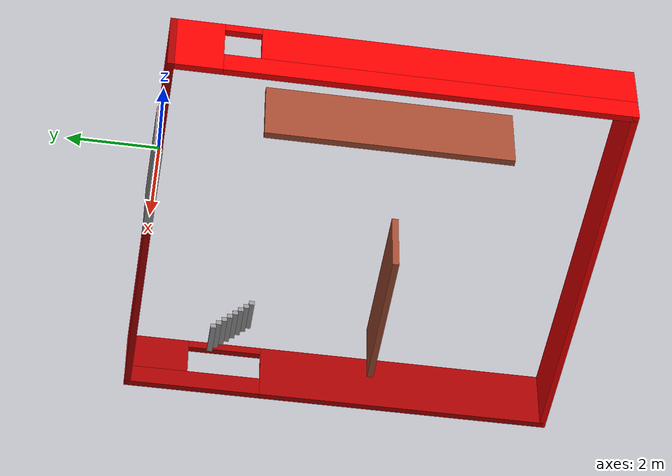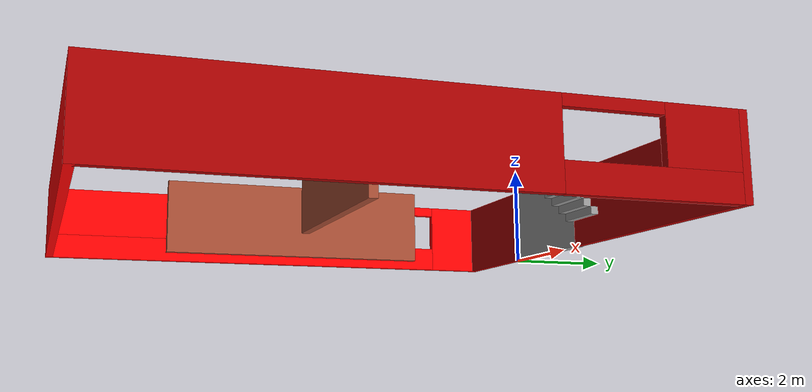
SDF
<?xml version='1.0'?>
<sdf version='1.6'>
  <model name='myhouse'>
    <pose frame=''>2.575 -5 0 0 -0 0</pose>
    <link name='Door_0'>
      <collision name='Door_0_Collision'>
        <geometry>
          <box>
            <size>2.4609 0.2 1.5</size>
          </box>
        </geometry>
        <pose frame=''>0 0 0.75 0 -0 0</pose>
      </collision>
      <visual name='Door_0_Visual'>
        <pose frame=''>0 0 0.75 0 -0 0</pose>
        <geometry>
          <box>
            <size>2.4609 0.2 1.5</size>
          </box>
        </geometry>
        <material>
          <script>
            <uri>file://media/materials/scripts/gazebo.material</uri>
            <name>Gazebo/Grey</name>
          </script>
        </material>
      </visual>
      <pose frame=''>-1.22464 5.01272 0 0 0 -3.13845</pose>
    </link>
    <link name='Stairs_1'>
      <visual name='Stairs_1_Visual_0'>
        <pose frame=''>3.16906 3.19744 0.0625 0 -0 0</pose>
        <geometry>
          <box>
            <size>0.8 0.125 0.125</size>
          </box>
        </geometry>
        <material>
          <script>
            <uri>file://media/materials/scripts/gazebo.material</uri>
            <name>Gazebo/Grey</name>
          </script>
          <ambient>1 1 1 1</ambient>
        </material>
        <meta>
          <layer>0</layer>
        </meta>
      </visual>
      <collision name='Stairs_1_Collision_0'>
        <geometry>
          <box>
            <size>0.8 0.125 0.125</size>
          </box>
        </geometry>
        <pose frame=''>3.16906 3.19744 0.0625 0 -0 0</pose>
      </collision>
      <visual name='Stairs_1_Visual_1'>
        <pose frame=''>3.16906 3.07244 0.1875 0 -0 0</pose>
        <geometry>
          <box>
            <size>0.8 0.125 0.125</size>
          </box>
        </geometry>
        <material>
          <script>
            <uri>file://media/materials/scripts/gazebo.material</uri>
            <name>Gazebo/Grey</name>
          </script>
          <ambient>1 1 1 1</ambient>
        </material>
        <meta>
          <layer>0</layer>
        </meta>
      </visual>
      <collision name='Stairs_1_Collision_1'>
        <geometry>
          <box>
            <size>0.8 0.125 0.125</size>
          </box>
        </geometry>
        <pose frame=''>3.16906 3.07244 0.1875 0 -0 0</pose>
      </collision>
      <visual name='Stairs_1_Visual_2'>
        <pose frame=''>3.16906 2.94744 0.3125 0 -0 0</pose>
        <geometry>
          <box>
            <size>0.8 0.125 0.125</size>
          </box>
        </geometry>
        <material>
          <script>
            <uri>file://media/materials/scripts/gazebo.material</uri>
            <name>Gazebo/Grey</name>
          </script>
          <ambient>1 1 1 1</ambient>
        </material>
        <meta>
          <layer>0</layer>
        </meta>
      </visual>
      <collision name='Stairs_1_Collision_2'>
        <geometry>
          <box>
            <size>0.8 0.125 0.125</size>
          </box>
        </geometry>
        <pose frame=''>3.16906 2.94744 0.3125 0 -0 0</pose>
      </collision>
      <visual name='Stairs_1_Visual_3'>
        <pose frame=''>3.16906 2.82244 0.4375 0 -0 0</pose>
        <geometry>
          <box>
            <size>0.8 0.125 0.125</size>
          </box>
        </geometry>
        <material>
          <script>
            <uri>file://media/materials/scripts/gazebo.material</uri>
            <name>Gazebo/Grey</name>
          </script>
          <ambient>1 1 1 1</ambient>
        </material>
        <meta>
          <layer>0</layer>
        </meta>
      </visual>
      <collision name='Stairs_1_Collision_3'>
        <geometry>
          <box>
            <size>0.8 0.125 0.125</size>
          </box>
        </geometry>
        <pose frame=''>3.16906 2.82244 0.4375 0 -0 0</pose>
      </collision>
      <visual name='Stairs_1_Visual_4'>
        <pose frame=''>3.16906 2.69744 0.5625 0 -0 0</pose>
        <geometry>
          <box>
            <size>0.8 0.125 0.125</size>
          </box>
        </geometry>
        <material>
          <script>
            <uri>file://media/materials/scripts/gazebo.material</uri>
            <name>Gazebo/Grey</name>
          </script>
          <ambient>1 1 1 1</ambient>
        </material>
        <meta>
          <layer>0</layer>
        </meta>
      </visual>
      <collision name='Stairs_1_Collision_4'>
        <geometry>
          <box>
            <size>0.8 0.125 0.125</size>
          </box>
        </geometry>
        <pose frame=''>3.16906 2.69744 0.5625 0 -0 0</pose>
      </collision>
      <visual name='Stairs_1_Visual_5'>
        <pose frame=''>3.16906 2.57244 0.6875 0 -0 0</pose>
        <geometry>
          <box>
            <size>0.8 0.125 0.125</size>
          </box>
        </geometry>
        <material>
          <script>
            <uri>file://media/materials/scripts/gazebo.material</uri>
            <name>Gazebo/Grey</name>
          </script>
          <ambient>1 1 1 1</ambient>
        </material>
        <meta>
          <layer>0</layer>
        </meta>
      </visual>
      <collision name='Stairs_1_Collision_5'>
        <geometry>
          <box>
            <size>0.8 0.125 0.125</size>
          </box>
        </geometry>
        <pose frame=''>3.16906 2.57244 0.6875 0 -0 0</pose>
      </collision>
      <visual name='Stairs_1_Visual_6'>
        <pose frame=''>3.16906 2.44744 0.8125 0 -0 0</pose>
        <geometry>
          <box>
            <size>0.8 0.125 0.125</size>
          </box>
        </geometry>
        <material>
          <script>
            <uri>file://media/materials/scripts/gazebo.material</uri>
            <name>Gazebo/Grey</name>
          </script>
          <ambient>1 1 1 1</ambient>
        </material>
        <meta>
          <layer>0</layer>
        </meta>
      </visual>
      <collision name='Stairs_1_Collision_6'>
        <geometry>
          <box>
            <size>0.8 0.125 0.125</size>
          </box>
        </geometry>
        <pose frame=''>3.16906 2.44744 0.8125 0 -0 0</pose>
      </collision>
      <visual name='Stairs_1_Visual_7'>
        <pose frame=''>3.16906 2.32244 0.9375 0 -0 0</pose>
        <geometry>
          <box>
            <size>0.8 0.125 0.125</size>
          </box>
        </geometry>
        <material>
          <script>
            <uri>file://media/materials/scripts/gazebo.material</uri>
            <name>Gazebo/Grey</name>
          </script>
          <ambient>1 1 1 1</ambient>
        </material>
        <meta>
          <layer>0</layer>
        </meta>
      </visual>
      <collision name='Stairs_1_Collision_7'>
        <geometry>
          <box>
            <size>0.8 0.125 0.125</size>
          </box>
        </geometry>
        <pose frame=''>3.16906 2.32244 0.9375 0 -0 0</pose>
      </collision>
    </link>
    <link name='Wall_17'>
      <pose frame=''>-4.925 0 0 0 0 -1.5708</pose>
      <visual name='Wall_17_Visual_0'>
        <pose frame=''>-4.48233 0 0.75 0 -0 0</pose>
        <geometry>
          <box>
            <size>1.18533 0.15 1.5</size>
          </box>
        </geometry>
        <material>
          <script>
            <uri>file://media/materials/scripts/gazebo.material</uri>
            <name>Gazebo/Grey</name>
          </script>
          <ambient>1 0 0 1</ambient>
        </material>
        <meta>
          <layer>0</layer>
        </meta>
      </visual>
      <collision name='Wall_17_Collision_0'>
        <geometry>
          <box>
            <size>1.18533 0.15 1.5</size>
          </box>
        </geometry>
        <pose frame=''>-4.48233 0 0.75 0 -0 0</pose>
      </collision>
      <visual name='Wall_17_Visual_1'>
        <pose frame=''>0.592665 0 0.25 0 -0 0</pose>
        <geometry>
          <box>
            <size>8.96467 0.15 0.5</size>
          </box>
        </geometry>
        <material>
          <script>
            <uri>file://media/materials/scripts/gazebo.material</uri>
            <name>Gazebo/Grey</name>
          </script>
          <ambient>1 0 0 1</ambient>
        </material>
        <meta>
          <layer>0</layer>
        </meta>
      </visual>
      <collision name='Wall_17_Collision_1'>
        <geometry>
          <box>
            <size>8.96467 0.15 0.5</size>
          </box>
        </geometry>
        <pose frame=''>0.592665 0 0.25 0 -0 0</pose>
      </collision>
      <visual name='Wall_17_Visual_2'>
        <pose frame=''>0.992665 0 1 0 -0 0</pose>
        <geometry>
          <box>
            <size>8.16467 0.15 1</size>
          </box>
        </geometry>
        <material>
          <script>
            <uri>file://media/materials/scripts/gazebo.material</uri>
            <name>Gazebo/Grey</name>
          </script>
          <ambient>1 0 0 1</ambient>
        </material>
        <meta>
          <layer>0</layer>
        </meta>
      </visual>
      <collision name='Wall_17_Collision_2'>
        <geometry>
          <box>
            <size>8.16467 0.15 1</size>
          </box>
        </geometry>
        <pose frame=''>0.992665 0 1 0 -0 0</pose>
      </collision>
      <visual name='Wall_17_Visual_3'>
        <pose frame=''>-3.48967 0 1.4 0 -0 0</pose>
        <geometry>
          <box>
            <size>0.8 0.15 0.2</size>
          </box>
        </geometry>
        <material>
          <script>
            <uri>file://media/materials/scripts/gazebo.material</uri>
            <name>Gazebo/Grey</name>
          </script>
          <ambient>1 0 0 1</ambient>
        </material>
        <meta>
          <layer>0</layer>
        </meta>
      </visual>
      <collision name='Wall_17_Collision_3'>
        <geometry>
          <box>
            <size>0.8 0.15 0.2</size>
          </box>
        </geometry>
        <pose frame=''>-3.48967 0 1.4 0 -0 0</pose>
      </collision>
    </link>
    <link name='Wall_19'>
      <collision name='Wall_19_Collision'>
        <geometry>
          <box>
            <size>10 0.15 1.5</size>
          </box>
        </geometry>
        <pose frame=''>0 0 0.75 0 -0 0</pose>
      </collision>
      <visual name='Wall_19_Visual'>
        <pose frame=''>0 0 0.75 0 -0 0</pose>
        <geometry>
          <box>
            <size>10 0.15 1.5</size>
          </box>
        </geometry>
        <material>
          <script>
            <uri>file://media/materials/scripts/gazebo.material</uri>
            <name>Gazebo/Grey</name>
          </script>
          <ambient>1 0 0 1</ambient>
        </material>
        <meta>
          <layer>0</layer>
        </meta>
      </visual>
      <pose frame=''>0 -5 0 0 -0 0</pose>
    </link>
    <link name='Wall_20'>
      <pose frame=''>4.925 0 0 0 -0 1.5708</pose>
      <visual name='Wall_20_Visual_0'>
        <pose frame=''>-1.60565 0 0.75 0 -0 0</pose>
        <geometry>
          <box>
            <size>6.93871 0.15 1.5</size>
          </box>
        </geometry>
        <material>
          <script>
            <uri>file://media/materials/scripts/gazebo.material</uri>
            <name>Gazebo/Grey</name>
          </script>
          <ambient>0.666667 0 0 1</ambient>
        </material>
        <meta>
          <layer>0</layer>
        </meta>
      </visual>
      <collision name='Wall_20_Collision_0'>
        <geometry>
          <box>
            <size>6.93871 0.15 1.5</size>
          </box>
        </geometry>
        <pose frame=''>-1.60565 0 0.75 0 -0 0</pose>
      </collision>
      <visual name='Wall_20_Visual_1'>
        <pose frame=''>3.46935 0 0.25 0 -0 0</pose>
        <geometry>
          <box>
            <size>3.21129 0.15 0.5</size>
          </box>
        </geometry>
        <material>
          <script>
            <uri>file://media/materials/scripts/gazebo.material</uri>
            <name>Gazebo/Grey</name>
          </script>
          <ambient>0.666667 0 0 1</ambient>
        </material>
        <meta>
          <layer>0</layer>
        </meta>
      </visual>
      <collision name='Wall_20_Collision_1'>
        <geometry>
          <box>
            <size>3.21129 0.15 0.5</size>
          </box>
        </geometry>
        <pose frame=''>3.46935 0 0.25 0 -0 0</pose>
      </collision>
      <visual name='Wall_20_Visual_2'>
        <pose frame=''>4.3365 0 1 0 -0 0</pose>
        <geometry>
          <box>
            <size>1.47701 0.15 1</size>
          </box>
        </geometry>
        <material>
          <script>
            <uri>file://media/materials/scripts/gazebo.material</uri>
            <name>Gazebo/Grey</name>
          </script>
          <ambient>0.666667 0 0 1</ambient>
        </material>
        <meta>
          <layer>0</layer>
        </meta>
      </visual>
      <collision name='Wall_20_Collision_2'>
        <geometry>
          <box>
            <size>1.47701 0.15 1</size>
          </box>
        </geometry>
        <pose frame=''>4.3365 0 1 0 -0 0</pose>
      </collision>
      <visual name='Wall_20_Visual_3'>
        <pose frame=''>2.73085 0 1.4 0 -0 0</pose>
        <geometry>
          <box>
            <size>1.73429 0.15 0.2</size>
          </box>
        </geometry>
        <material>
          <script>
            <uri>file://media/materials/scripts/gazebo.material</uri>
            <name>Gazebo/Grey</name>
          </script>
          <ambient>0.666667 0 0 1</ambient>
        </material>
        <meta>
          <layer>0</layer>
        </meta>
      </visual>
      <collision name='Wall_20_Collision_3'>
        <geometry>
          <box>
            <size>1.73429 0.15 0.2</size>
          </box>
        </geometry>
        <pose frame=''>2.73085 0 1.4 0 -0 0</pose>
      </collision>
    </link>
    <link name='Wall_21'>
      <collision name='Wall_21_Collision'>
        <geometry>
          <box>
            <size>5 0.15 1.5</size>
          </box>
        </geometry>
        <pose frame=''>0 0 0.75 0 -0 0</pose>
      </collision>
      <visual name='Wall_21_Visual'>
        <pose frame=''>0 0 0.75 0 -0 0</pose>
        <geometry>
          <box>
            <size>5 0.15 1.5</size>
          </box>
        </geometry>
        <material>
          <script>
            <uri>file://media/materials/scripts/gazebo.material</uri>
            <name>Gazebo/Grey</name>
          </script>
          <ambient>0.666667 0 0 1</ambient>
        </material>
        <meta>
          <layer>0</layer>
        </meta>
      </visual>
      <pose frame=''>2.5 5 0 0 -0 3.14159</pose>
    </link>
    <link name='Wall_23'>
      <collision name='Wall_23_Collision'>
        <geometry>
          <box>
            <size>5.5 0.15 1.5</size>
          </box>
        </geometry>
        <pose frame=''>0 0 0.75 0 -0 0</pose>
      </collision>
      <visual name='Wall_23_Visual'>
        <pose frame=''>0 0 0.75 0 -0 0</pose>
        <geometry>
          <box>
            <size>5.5 0.15 1.5</size>
          </box>
        </geometry>
        <material>
          <script>
            <uri>file://media/materials/scripts/gazebo.material</uri>
            <name>Gazebo/Bricks</name>
          </script>
          <ambient>0.996078 0.47451 0.0196078 1</ambient>
        </material>
        <meta>
          <layer>0</layer>
        </meta>
      </visual>
      <pose frame=''>-3.302 0.054 0 0 0 -1.5708</pose>
    </link>
    <link name='Wall_25'>
      <collision name='Wall_25_Collision'>
        <geometry>
          <box>
            <size>3.75 0.15 1.5</size>
          </box>
        </geometry>
        <pose frame=''>0 0 0.75 0 -0 0</pose>
      </collision>
      <visual name='Wall_25_Visual'>
        <pose frame=''>0 0 0.75 0 -0 0</pose>
        <geometry>
          <box>
            <size>3.75 0.15 1.5</size>
          </box>
        </geometry>
        <material>
          <script>
            <uri>file://media/materials/scripts/gazebo.material</uri>
            <name>Gazebo/Bricks</name>
          </script>
          <ambient>0.996078 0.47451 0.0196078 1</ambient>
        </material>
        <meta>
          <layer>0</layer>
        </meta>
      </visual>
      <pose frame=''>1.994 -0.645 0 0 -0 0</pose>
    </link>
    <link name='Wall_7'>
      <collision name='Wall_7_Collision'>
        <geometry>
          <box>
            <size>2.5 0.15 1.5</size>
          </box>
        </geometry>
        <pose frame=''>0 0 0.75 0 -0 0</pose>
      </collision>
      <visual name='Wall_7_Visual'>
        <pose frame=''>0 0 0.75 0 -0 0</pose>
        <geometry>
          <box>
            <size>2.5 0.15 1.5</size>
          </box>
        </geometry>
        <material>
          <script>
            <uri>file://media/materials/scripts/gazebo.material</uri>
            <name>Gazebo/Grey</name>
          </script>
          <ambient>0.666667 0 0 1</ambient>
        </material>
        <meta>
          <layer>0</layer>
        </meta>
      </visual>
      <pose frame=''>-3.75 5 0 0 -0 3.14159</pose>
    </link>
    <static>1</static>
  </model>
</sdf>
